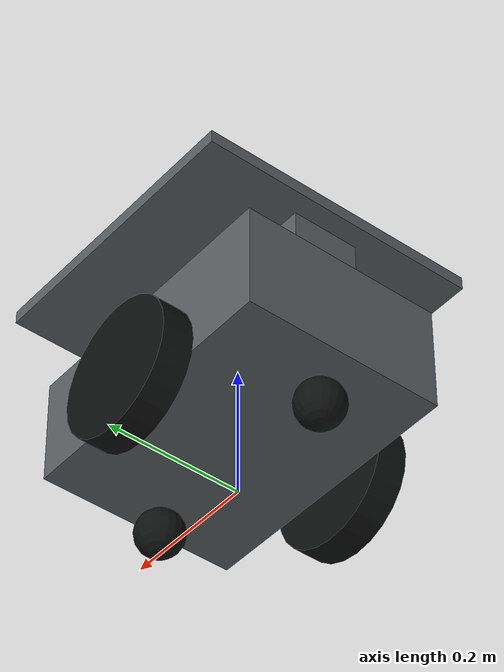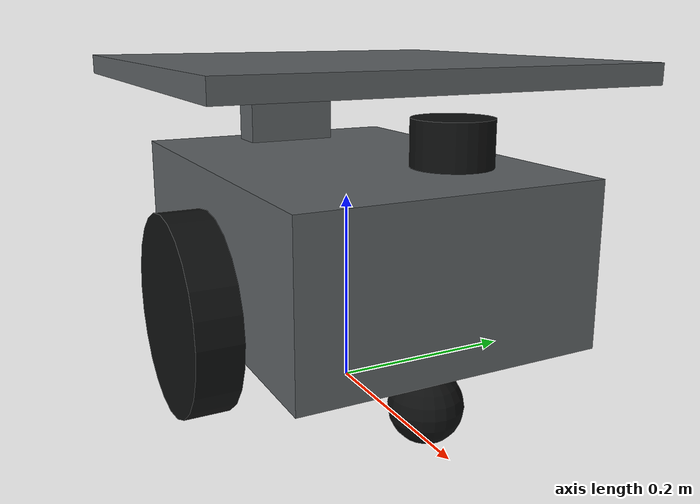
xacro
<?xml version="1.0"?>
<robot xmlns:xacro="http://www.ros.org/wiki/xacro" name="reconfactory_amr">
  <material name="steel"><color rgba="0.36 0.38 0.39 1"/></material>
  <material name="rubber"><color rgba="0.055 0.06 0.06 1"/></material>
  <link name="base_footprint"/>
  <joint name="base_joint" type="fixed"><parent link="base_footprint"/><child link="base_link"/><origin xyz="0 0 0.16"/></joint>
  <link name="base_link">
    <inertial><mass value="12"/><inertia ixx="0.16" iyy="0.22" izz="0.29" ixy="0" ixz="0" iyz="0"/></inertial>
    <visual><geometry><box size="0.42 0.30 0.16"/></geometry><material name="steel"/></visual>
    <visual name="payload_tray"><origin xyz="0 0 0.17"/><geometry><box size="0.42 0.42 0.02"/></geometry><material name="steel"/></visual>
    <visual name="tray_support"><origin xyz="-0.16 0 0.12"/><geometry><box size="0.04 0.10 0.08"/></geometry><material name="steel"/></visual>
    <collision><geometry><box size="0.42 0.30 0.16"/></geometry></collision>
  </link>
  <xacro:macro name="wheel" params="side y">
    <link name="${side}_wheel">
      <inertial><mass value="0.5"/><inertia ixx="0.0014" iyy="0.0025" izz="0.0014" ixy="0" ixz="0" iyz="0"/></inertial>
      <visual><origin rpy="1.5707963 0 0"/><geometry><cylinder radius="0.10" length="0.045"/></geometry><material name="rubber"/></visual>
      <collision><origin rpy="1.5707963 0 0"/><geometry><cylinder radius="0.10" length="0.045"/></geometry></collision>
    </link>
    <joint name="${side}_wheel_joint" type="continuous"><parent link="base_link"/><child link="${side}_wheel"/><origin xyz="0 ${y} -0.06"/><axis xyz="0 1 0"/><limit effort="10" velocity="8"/><dynamics damping="0.01"/></joint>
    <gazebo reference="${side}_wheel"><mu1>1.0</mu1><mu2>1.0</mu2></gazebo>
  </xacro:macro>
  <xacro:wheel side="left" y="0.1725"/><xacro:wheel side="right" y="-0.1725"/>
  <xacro:macro name="caster" params="name x">
    <link name="${name}"><inertial><mass value="0.1"/><inertia ixx="0.00004" iyy="0.00004" izz="0.00004" ixy="0" ixz="0" iyz="0"/></inertial>
      <visual><geometry><sphere radius="0.035"/></geometry><material name="rubber"/></visual>
      <collision><geometry><sphere radius="0.035"/></geometry></collision>
    </link>
    <joint name="${name}_joint" type="fixed"><parent link="base_link"/><child link="${name}"/><origin xyz="${x} 0 -0.125"/></joint>
    <gazebo reference="${name}"><mu1>0.001</mu1><mu2>0.001</mu2></gazebo>
  </xacro:macro>
  <xacro:caster name="front_caster" x="0.16"/><xacro:caster name="rear_caster" x="-0.16"/>
  <link name="laser_link"><inertial><mass value="0.1"/><inertia ixx="0.0001" iyy="0.0001" izz="0.0001" ixy="0" ixz="0" iyz="0"/></inertial>
    <visual><geometry><cylinder radius="0.035" length="0.04"/></geometry><material name="rubber"/></visual>
  </link>
  <joint name="laser_joint" type="fixed"><parent link="base_link"/><child link="laser_link"/><origin xyz="0.19 0 0.12"/></joint>
  <gazebo reference="laser_link">
    <sensor name="lidar" type="gpu_lidar"><topic>/amr/scan</topic><gz_frame_id>laser_link</gz_frame_id><update_rate>10</update_rate><always_on>true</always_on>
      <lidar><scan><horizontal><samples>360</samples><resolution>1</resolution><min_angle>-3.14159265</min_angle><max_angle>3.14159265</max_angle></horizontal></scan>
        <range><min>0.08</min><max>15.0</max><resolution>0.01</resolution></range>
      </lidar>
    </sensor>
  </gazebo>
  <gazebo>
    <plugin filename="reconfactory-actuator-watchdog" name="reconfactory::ActuatorWatchdog">
      <command_timeout_s>0.30</command_timeout_s><output_period_s>0.02</output_period_s>
      <startup_zero_confirmation_s>0.30</startup_zero_confirmation_s>
      <require_explicit_reset_after_timeout>true</require_explicit_reset_after_timeout>
    </plugin>
    <plugin filename="gz-sim-diff-drive-system" name="gz::sim::systems::DiffDrive">
      <left_joint>left_wheel_joint</left_joint><right_joint>right_wheel_joint</right_joint>
      <wheel_separation>0.345</wheel_separation><wheel_radius>0.10</wheel_radius>
      <topic>/amr/actuator_cmd_vel</topic><odom_topic>/amr/odom</odom_topic><tf_topic>/amr/tf</tf_topic>
      <frame_id>odom</frame_id><child_frame_id>base_footprint</child_frame_id><odom_publish_frequency>30</odom_publish_frequency>
      <max_linear_velocity>0.55</max_linear_velocity><max_angular_velocity>1.0</max_angular_velocity>
      <max_linear_acceleration>0.7</max_linear_acceleration><max_angular_acceleration>1.0</max_angular_acceleration>
    </plugin>
    <plugin filename="gz-sim-joint-state-publisher-system" name="gz::sim::systems::JointStatePublisher">
      <topic>/amr/joint_states</topic><joint_name>left_wheel_joint</joint_name><joint_name>right_wheel_joint</joint_name>
    </plugin>
  </gazebo>
</robot>
